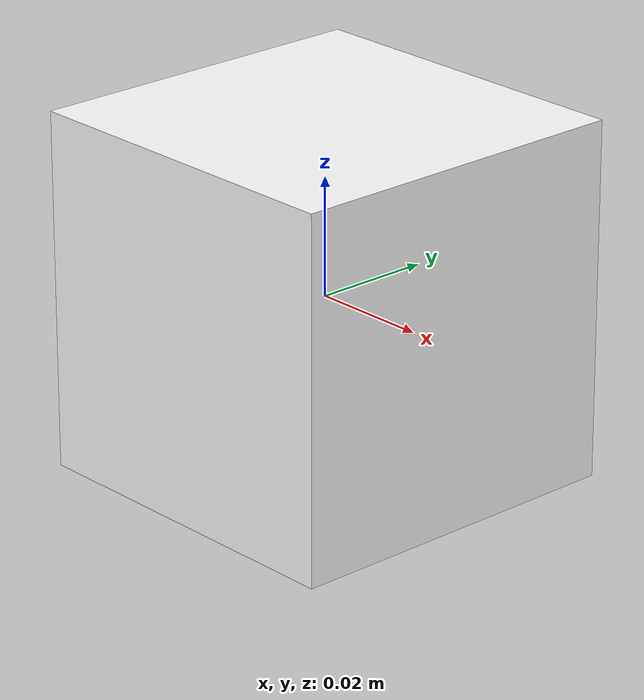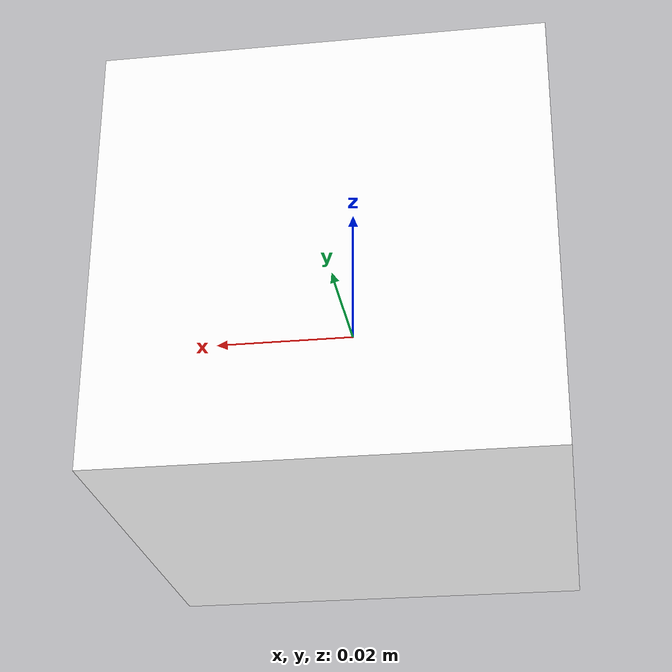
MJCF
<mujoco model="cubeH">
  <asset>
    <mesh file="meshes/ben_cube.stl" name="cubeH" scale="0.06 0.06 0.06"/>
    <texture file="../textures/H.png" name="tex-H"/>
    <material name="H" reflectance="1.0"  texture="tex-H" texuniform="true"/>
  </asset>
  <worldbody>
    <body name="cubeH">
      <body name="collision">
        <geom pos="0 0 0" mesh="cubeH" type="mesh" solimp="0.998 0.998 0.001" rgba="1 1 1 1" solref="0.001 1" density="500" friction="0.95 0.3 0.1" material="H" group="0" condim="6"/>
      </body>
      <body name="visual">
        <geom pos="0 0 0" mesh="cubeH" type="mesh" density="5000" rgba="1 1 0 1" group="0" condim="6"/>
        <geom pos="0 0 0" mesh="cubeH" type="mesh" rgba="0 1 0 1" conaffinity="0" contype="0" group="1" mass="0.0001"/>
      </body>
      <site rgba="0 0 0 0" size="0.005" pos="0 0 -0.06" name="bottom_site"/>
      <site rgba="0 0 0 0" size="0.005" pos="0 0 0.04" name="top_site"/>
      <site rgba="0 0 0 0" size="0.005" pos="0.025 0.025 0" name="horizontal_radius_site"/>
    </body>
  </worldbody>
</mujoco>
